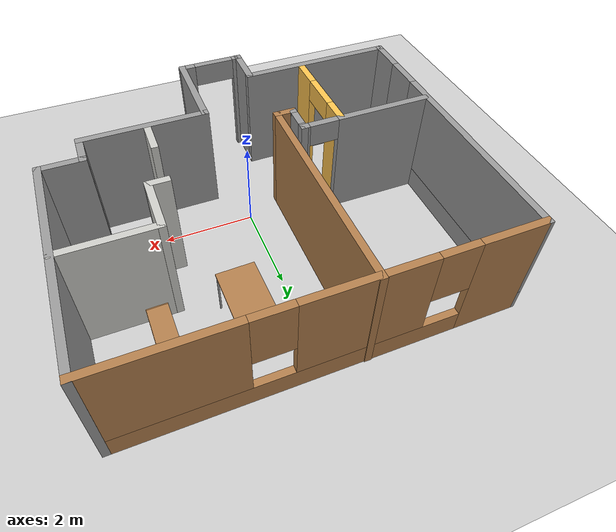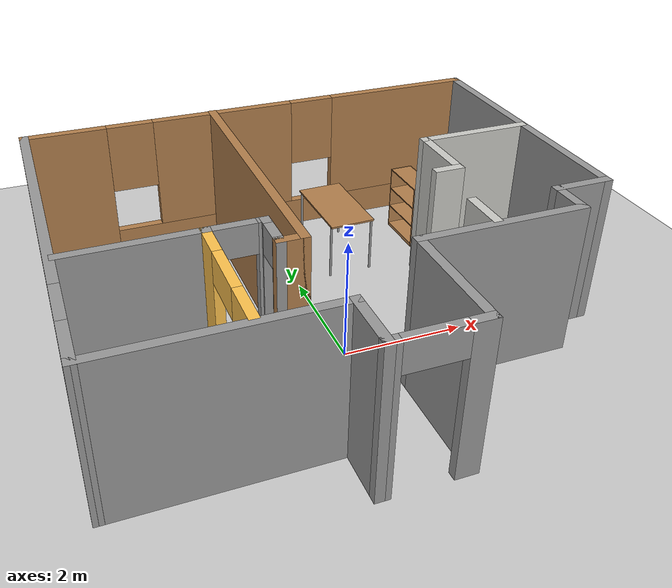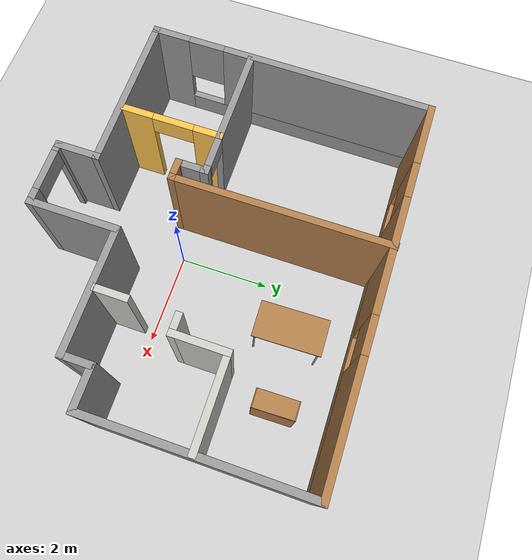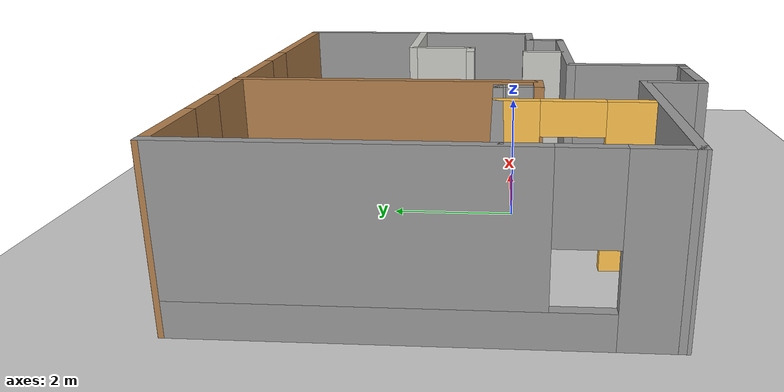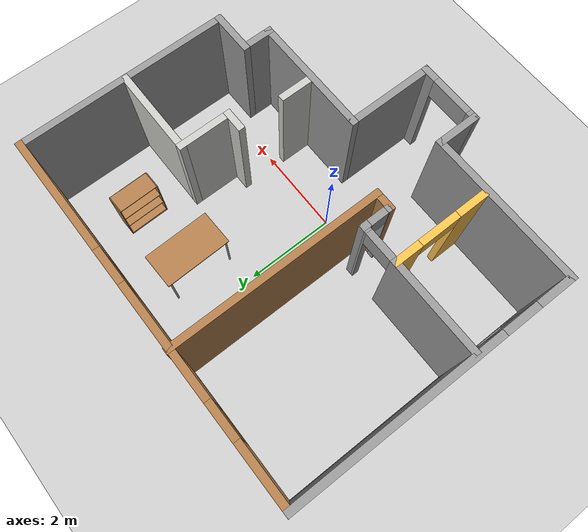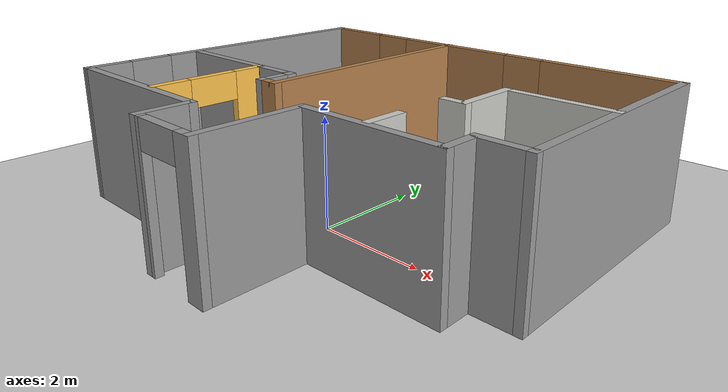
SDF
<sdf version="1.6">
 <world name="default">
  <light name="sun" type="directional">
   <pose>0 0 10 0 -0 0</pose>
   <diffuse>0.8 0.8 0.8 1</diffuse>
   <specular>0.2 0.2 0.2 1</specular>
   <attenuation>
    <range>1000</range>
    <constant>0.9</constant>
    <linear>0.01</linear>
    <quadratic>0.001</quadratic>
   </attenuation>
   <direction>-0.5 0.1 -0.9</direction>
  </light>
  <model name="ground_plane">
   <static>1</static>
   <link name="link">
    <collision name="collision">
     <geometry><plane><normal>0 0 1</normal><size>100 100</size></plane></geometry>
     <surface><friction><ode><mu>100</mu><mu2>50</mu2></ode></friction></surface>
    </collision>
    <visual name="visual">
     <cast_shadows>0</cast_shadows>
     <geometry><plane><normal>0 0 1</normal><size>100 100</size></plane></geometry>
     <material>
      <script><uri>file://media/materials/scripts/gazebo.material</uri><name>Gazebo/Grey</name></script>
     </material>
    </visual>
   </link>
  </model>
  <gravity>0 0 -9.8</gravity>
  <magnetic_field>6e-06 2.3e-05 -4.2e-05</magnetic_field>
  <atmosphere type="adiabatic"/>
  <physics name="default_physics" default="0" type="ode">
   <max_step_size>0.001</max_step_size>
   <real_time_factor>1</real_time_factor>
   <real_time_update_rate>1000</real_time_update_rate>
  </physics>
  <scene><ambient>0.4 0.4 0.4 1</ambient><background>0.7 0.7 0.7 1</background><shadows>1</shadows></scene>
  <audio><device>default</device></audio>
  <spherical_coordinates>
   <surface_model>EARTH_WGS84</surface_model>
   <latitude_deg>0</latitude_deg>
   <longitude_deg>0</longitude_deg>
   <elevation>0</elevation>
   <heading_deg>0</heading_deg>
  </spherical_coordinates>
  <model name="small_apt_1">
   <pose>-0.029378 0.719467 0 0 -0 0</pose>
   <link name="Wall_58">
    <pose>0.025297 3.51647 0 0 -0 0</pose>
    <visual name="Wall_58_Visual_0">
     <pose>-3.4116 0 1.25 0 -0 0</pose>
     <geometry><box><size>1.42681 0.15 2.5</size></box></geometry>
     <material>
      <script><uri>file://media/materials/scripts/gazebo.material</uri><name>Gazebo/Wood</name></script>
      <ambient>1 1 1 1</ambient>
     </material>
     <meta><layer>0</layer></meta>
    </visual>
    <collision name="Wall_58_Collision_0">
     <geometry><box><size>1.42681 0.15 2.5</size></box></geometry>
     <pose>-3.4116 0 1.25 0 -0 0</pose>
    </collision>
    <visual name="Wall_58_Visual_1">
     <pose>0.713403 0 0.25 0 -0 0</pose>
     <geometry><box><size>6.82319 0.15 0.5</size></box></geometry>
     <material>
      <script><uri>file://media/materials/scripts/gazebo.material</uri><name>Gazebo/Wood</name></script>
      <ambient>1 1 1 1</ambient>
     </material>
     <meta><layer>0</layer></meta>
    </visual>
    <collision name="Wall_58_Collision_1">
     <geometry><box><size>6.82319 0.15 0.5</size></box></geometry>
     <pose>0.713403 0 0.25 0 -0 0</pose>
    </collision>
    <visual name="Wall_58_Visual_2">
     <pose>-0.627406 0 1.5 0 -0 0</pose>
     <geometry><box><size>2.54157 0.15 2</size></box></geometry>
     <material>
      <script><uri>file://media/materials/scripts/gazebo.material</uri><name>Gazebo/Wood</name></script>
      <ambient>1 1 1 1</ambient>
     </material>
     <meta><layer>0</layer></meta>
    </visual>
    <collision name="Wall_58_Collision_2">
     <geometry><box><size>2.54157 0.15 2</size></box></geometry>
     <pose>-0.627406 0 1.5 0 -0 0</pose>
    </collision>
    <visual name="Wall_58_Visual_3">
     <pose>2.78419 0 1.5 0 -0 0</pose>
     <geometry><box><size>2.68162 0.15 2</size></box></geometry>
     <material>
      <script><uri>file://media/materials/scripts/gazebo.material</uri><name>Gazebo/Wood</name></script>
      <ambient>1 1 1 1</ambient>
     </material>
     <meta><layer>0</layer></meta>
    </visual>
    <collision name="Wall_58_Collision_3">
     <geometry><box><size>2.68162 0.15 2</size></box></geometry>
     <pose>2.78419 0 1.5 0 -0 0</pose>
    </collision>
    <visual name="Wall_58_Visual_4">
     <pose>-2.29819 0 1.9 0 -0 0</pose>
     <geometry><box><size>0.8 0.15 1.2</size></box></geometry>
     <material>
      <script><uri>file://media/materials/scripts/gazebo.material</uri><name>Gazebo/Wood</name></script>
      <ambient>1 1 1 1</ambient>
     </material>
     <meta><layer>0</layer></meta>
    </visual>
    <collision name="Wall_58_Collision_4">
     <geometry><box><size>0.8 0.15 1.2</size></box></geometry>
     <pose>-2.29819 0 1.9 0 -0 0</pose>
    </collision>
    <visual name="Wall_58_Visual_5">
     <pose>1.04338 0 1.9 0 -0 0</pose>
     <geometry><box><size>0.8 0.15 1.2</size></box></geometry>
     <material>
      <script><uri>file://media/materials/scripts/gazebo.material</uri><name>Gazebo/Wood</name></script>
      <ambient>1 1 1 1</ambient>
     </material>
     <meta><layer>0</layer></meta>
    </visual>
    <collision name="Wall_58_Collision_5">
     <geometry><box><size>0.8 0.15 1.2</size></box></geometry>
     <pose>1.04338 0 1.9 0 -0 0</pose>
    </collision>
   </link>
   <link name="Wall_59">
    <collision name="Wall_59_Collision">
     <geometry><box><size>4.75 0.15 2.5</size></box></geometry>
     <pose>0 0 1.25 0 -0 0</pose>
    </collision>
    <visual name="Wall_59_Visual">
     <pose>0 0 1.25 0 -0 0</pose>
     <geometry><box><size>4.75 0.15 2.5</size></box></geometry>
     <material>
      <script><uri>file://media/materials/scripts/gazebo.material</uri><name>Gazebo/Grey</name></script>
      <ambient>1 1 1 1</ambient>
     </material>
     <meta><layer>0</layer></meta>
    </visual>
    <pose>4.07509 1.21661 0 0 -0 -1.57089</pose>
   </link>
   <link name="Wall_60">
    <collision name="Wall_60_Collision">
     <geometry><box><size>1 0.15 2.5</size></box></geometry>
     <pose>0 0 1.25 0 -0 0</pose>
    </collision>
    <visual name="Wall_60_Visual">
     <pose>0 0 1.25 0 -0 0</pose>
     <geometry><box><size>1 0.15 2.5</size></box></geometry>
     <material>
      <script><uri>file://media/materials/scripts/gazebo.material</uri><name>Gazebo/Grey</name></script>
      <ambient>1 1 1 1</ambient>
     </material>
     <meta><layer>0</layer></meta>
    </visual>
    <pose>3.64988 -1.08326 0 0 -0 3.14159</pose>
   </link>
   <link name="Wall_61">
    <collision name="Wall_61_Collision">
     <geometry><box><size>0.75 0.15 2.5</size></box></geometry>
     <pose>0 0 1.25 0 -0 0</pose>
    </collision>
    <visual name="Wall_61_Visual">
     <pose>0 0 1.25 0 -0 0</pose>
     <geometry><box><size>0.75 0.15 2.5</size></box></geometry>
     <material>
      <script><uri>file://media/materials/scripts/gazebo.material</uri><name>Gazebo/Grey</name></script>
      <ambient>1 1 1 1</ambient>
     </material>
     <meta><layer>0</layer></meta>
    </visual>
    <pose>3.22488 -1.38326 0 0 -0 -1.5708</pose>
   </link>
   <link name="Wall_62">
    <collision name="Wall_62_Collision">
     <geometry><box><size>2.75 0.15 2.5</size></box></geometry>
     <pose>0 0 1.25 0 -0 0</pose>
    </collision>
    <visual name="Wall_62_Visual">
     <pose>0 0 1.25 0 -0 0</pose>
     <geometry><box><size>2.75 0.15 2.5</size></box></geometry>
     <material>
      <script><uri>file://media/materials/scripts/gazebo.material</uri><name>Gazebo/Grey</name></script>
      <ambient>1 1 1 1</ambient>
     </material>
     <meta><layer>0</layer></meta>
    </visual>
    <pose>1.92488 -1.68326 0 0 -0 3.14159</pose>
   </link>
   <link name="Wall_63">
    <collision name="Wall_63_Collision">
     <geometry><box><size>2 0.15 2.5</size></box></geometry>
     <pose>0 0 1.25 0 -0 0</pose>
    </collision>
    <visual name="Wall_63_Visual">
     <pose>0 0 1.25 0 -0 0</pose>
     <geometry><box><size>2 0.15 2.5</size></box></geometry>
     <material>
      <script><uri>file://media/materials/scripts/gazebo.material</uri><name>Gazebo/Grey</name></script>
      <ambient>1 1 1 1</ambient>
     </material>
     <meta><layer>0</layer></meta>
    </visual>
    <pose>0.624878 -2.60826 0 0 -0 -1.5708</pose>
   </link>
   <link name="Wall_64">
    <pose>-0.050122 -3.53326 0 0 -0 3.14159</pose>
    <visual name="Wall_64_Visual_0">
     <pose>-0.567309 0 1.25 0 -0 0</pose>
     <geometry><box><size>0.365382 0.15 2.5</size></box></geometry>
     <material>
      <script><uri>file://media/materials/scripts/gazebo.material</uri><name>Gazebo/Grey</name></script>
      <ambient>1 1 1 1</ambient>
     </material>
     <meta><layer>0</layer></meta>
    </visual>
    <collision name="Wall_64_Collision_0">
     <geometry><box><size>0.365382 0.15 2.5</size></box></geometry>
     <pose>-0.567309 0 1.25 0 -0 0</pose>
    </collision>
    <visual name="Wall_64_Visual_1">
     <pose>0.632691 0 1.25 0 -0 0</pose>
     <geometry><box><size>0.234618 0.15 2.5</size></box></geometry>
     <material>
      <script><uri>file://media/materials/scripts/gazebo.material</uri><name>Gazebo/Grey</name></script>
      <ambient>1 1 1 1</ambient>
     </material>
     <meta><layer>0</layer></meta>
    </visual>
    <collision name="Wall_64_Collision_1">
     <geometry><box><size>0.234618 0.15 2.5</size></box></geometry>
     <pose>0.632691 0 1.25 0 -0 0</pose>
    </collision>
    <visual name="Wall_64_Visual_2">
     <pose>0.065382 0 2.25 0 -0 0</pose>
     <geometry><box><size>0.9 0.15 0.5</size></box></geometry>
     <material>
      <script><uri>file://media/materials/scripts/gazebo.material</uri><name>Gazebo/Grey</name></script>
      <ambient>1 1 1 1</ambient>
     </material>
     <meta><layer>0</layer></meta>
    </visual>
    <collision name="Wall_64_Collision_2">
     <geometry><box><size>0.9 0.15 0.5</size></box></geometry>
     <pose>0.065382 0 2.25 0 -0 0</pose>
    </collision>
   </link>
   <link name="Wall_65">
    <collision name="Wall_65_Collision">
     <geometry><box><size>1 0.15 2.5</size></box></geometry>
     <pose>0 0 1.25 0 -0 0</pose>
    </collision>
    <visual name="Wall_65_Visual">
     <pose>0 0 1.25 0 -0 0</pose>
     <geometry><box><size>1 0.15 2.5</size></box></geometry>
     <material>
      <script><uri>file://media/materials/scripts/gazebo.material</uri><name>Gazebo/Grey</name></script>
      <ambient>1 1 1 1</ambient>
     </material>
     <meta><layer>0</layer></meta>
    </visual>
    <pose>-0.725122 -3.10826 0 0 -0 1.5708</pose>
   </link>
   <link name="Wall_66">
    <collision name="Wall_66_Collision">
     <geometry><box><size>3.5 0.15 2.5</size></box></geometry>
     <pose>0 0 1.25 0 -0 0</pose>
    </collision>
    <visual name="Wall_66_Visual">
     <pose>0 0 1.25 0 -0 0</pose>
     <geometry><box><size>3.5 0.15 2.5</size></box></geometry>
     <material>
      <script><uri>file://media/materials/scripts/gazebo.material</uri><name>Gazebo/Grey</name></script>
      <ambient>1 1 1 1</ambient>
     </material>
     <meta><layer>0</layer></meta>
    </visual>
    <pose>-2.39991 -2.68339 0 0 -0 -3.14151</pose>
   </link>
   <link name="Wall_67">
    <pose>-4.0497 0.416475 0 0 -0 1.56273</pose>
    <visual name="Wall_67_Visual_0">
     <pose>-2.74295 0 1.25 0 -0 0</pose>
     <geometry><box><size>0.864294 0.15 2.5</size></box></geometry>
     <material>
      <script><uri>file://media/materials/scripts/gazebo.material</uri><name>Gazebo/Grey</name></script>
      <ambient>1 1 1 1</ambient>
     </material>
     <meta><layer>0</layer></meta>
    </visual>
    <collision name="Wall_67_Collision_0">
     <geometry><box><size>0.864294 0.15 2.5</size></box></geometry>
     <pose>-2.74295 0 1.25 0 -0 0</pose>
    </collision>
    <visual name="Wall_67_Visual_1">
     <pose>0.432147 0 0.25 0 -0 0</pose>
     <geometry><box><size>5.48591 0.15 0.5</size></box></geometry>
     <material>
      <script><uri>file://media/materials/scripts/gazebo.material</uri><name>Gazebo/Grey</name></script>
      <ambient>1 1 1 1</ambient>
     </material>
     <meta><layer>0</layer></meta>
    </visual>
    <collision name="Wall_67_Collision_1">
     <geometry><box><size>5.48591 0.15 0.5</size></box></geometry>
     <pose>0.432147 0 0.25 0 -0 0</pose>
    </collision>
    <visual name="Wall_67_Visual_2">
     <pose>0.832147 0 1.5 0 -0 0</pose>
     <geometry><box><size>4.68591 0.15 2</size></box></geometry>
     <material>
      <script><uri>file://media/materials/scripts/gazebo.material</uri><name>Gazebo/Grey</name></script>
      <ambient>1 1 1 1</ambient>
     </material>
     <meta><layer>0</layer></meta>
    </visual>
    <collision name="Wall_67_Collision_2">
     <geometry><box><size>4.68591 0.15 2</size></box></geometry>
     <pose>0.832147 0 1.5 0 -0 0</pose>
    </collision>
    <visual name="Wall_67_Visual_3">
     <pose>-1.91081 0 1.9 0 -0 0</pose>
     <geometry><box><size>0.8 0.15 1.2</size></box></geometry>
     <material>
      <script><uri>file://media/materials/scripts/gazebo.material</uri><name>Gazebo/Grey</name></script>
      <ambient>1 1 1 1</ambient>
     </material>
     <meta><layer>0</layer></meta>
    </visual>
    <collision name="Wall_67_Collision_3">
     <geometry><box><size>0.8 0.15 1.2</size></box></geometry>
     <pose>-1.91081 0 1.9 0 -0 0</pose>
    </collision>
   </link>
   <link name="Wall_69">
    <collision name="Wall_69_Collision">
     <geometry><box><size>4.75 0.15 2.5</size></box></geometry>
     <pose>0 0 1.25 0 -0 0</pose>
    </collision>
    <visual name="Wall_69_Visual">
     <pose>0 0 1.25 0 -0 0</pose>
     <geometry><box><size>4.75 0.15 2.5</size></box></geometry>
     <material>
      <script><uri>file://media/materials/scripts/gazebo.material</uri><name>Gazebo/Wood</name></script>
      <ambient>0.435294 0.796078 0.67451 1</ambient>
     </material>
     <meta><layer>0</layer></meta>
    </visual>
    <pose>-0.780221 1.23326 0 0 -0 -1.5708</pose>
   </link>
   <link name="Wall_70">
    <collision name="Wall_70_Collision">
     <geometry><box><size>0.5 0.15 2.5</size></box></geometry>
     <pose>0 0 1.25 0 -0 0</pose>
    </collision>
    <visual name="Wall_70_Visual">
     <pose>0 0 1.25 0 -0 0</pose>
     <geometry><box><size>0.5 0.15 2.5</size></box></geometry>
     <material>
      <script><uri>file://media/materials/scripts/gazebo.material</uri><name>Gazebo/Wood</name></script>
      <ambient>1 1 1 1</ambient>
     </material>
     <meta><layer>0</layer></meta>
    </visual>
    <pose>-0.955221 -1.06674 0 0 -0 3.14159</pose>
   </link>
   <link name="Wall_71">
    <pose>-1.13022 -0.766744 0 0 -0 1.5708</pose>
    <visual name="Wall_71_Visual_0">
     <pose>-0.293963 0 1.25 0 -0 0</pose>
     <geometry><box><size>0.162075 0.15 2.5</size></box></geometry>
     <material>
      <script><uri>file://media/materials/scripts/gazebo.material</uri><name>Gazebo/Grey</name></script>
      <ambient>1 1 1 1</ambient>
     </material>
     <meta><layer>0</layer></meta>
    </visual>
    <collision name="Wall_71_Collision_0">
     <geometry><box><size>0.162075 0.15 2.5</size></box></geometry>
     <pose>-0.293963 0 1.25 0 -0 0</pose>
    </collision>
    <visual name="Wall_71_Visual_1">
     <pose>0.281037 0 1.25 0 -0 0</pose>
     <geometry><box><size>0.187925 0.15 2.5</size></box></geometry>
     <material>
      <script><uri>file://media/materials/scripts/gazebo.material</uri><name>Gazebo/Grey</name></script>
      <ambient>1 1 1 1</ambient>
     </material>
     <meta><layer>0</layer></meta>
    </visual>
    <collision name="Wall_71_Collision_1">
     <geometry><box><size>0.187925 0.15 2.5</size></box></geometry>
     <pose>0.281037 0 1.25 0 -0 0</pose>
    </collision>
    <visual name="Wall_71_Visual_2">
     <pose>-0.012925 0 2.25 0 -0 0</pose>
     <geometry><box><size>0.4 0.15 0.5</size></box></geometry>
     <material>
      <script><uri>file://media/materials/scripts/gazebo.material</uri><name>Gazebo/Grey</name></script>
      <ambient>1 1 1 1</ambient>
     </material>
     <meta><layer>0</layer></meta>
    </visual>
    <collision name="Wall_71_Collision_2">
     <geometry><box><size>0.4 0.15 0.5</size></box></geometry>
     <pose>-0.012925 0 2.25 0 -0 0</pose>
    </collision>
   </link>
   <link name="Wall_72">
    <pose>-2.55522 -0.466744 0 0 -0 3.14159</pose>
    <visual name="Wall_72_Visual_0">
     <pose>-1.40086 0 1.25 0 -0 0</pose>
     <geometry><box><size>0.198273 0.15 2.5</size></box></geometry>
     <material>
      <script><uri>file://media/materials/scripts/gazebo.material</uri><name>Gazebo/Grey</name></script>
      <ambient>1 1 1 1</ambient>
     </material>
     <meta><layer>0</layer></meta>
    </visual>
    <collision name="Wall_72_Collision_0">
     <geometry><box><size>0.198273 0.15 2.5</size></box></geometry>
     <pose>-1.40086 0 1.25 0 -0 0</pose>
    </collision>
    <visual name="Wall_72_Visual_1">
     <pose>0.424137 0 1.25 0 -0 0</pose>
     <geometry><box><size>2.15173 0.15 2.5</size></box></geometry>
     <material>
      <script><uri>file://media/materials/scripts/gazebo.material</uri><name>Gazebo/Grey</name></script>
      <ambient>1 1 1 1</ambient>
     </material>
     <meta><layer>0</layer></meta>
    </visual>
    <collision name="Wall_72_Collision_1">
     <geometry><box><size>2.15173 0.15 2.5</size></box></geometry>
     <pose>0.424137 0 1.25 0 -0 0</pose>
    </collision>
    <visual name="Wall_72_Visual_2">
     <pose>-0.976727 0 2.25 0 -0 0</pose>
     <geometry><box><size>0.65 0.15 0.5</size></box></geometry>
     <material>
      <script><uri>file://media/materials/scripts/gazebo.material</uri><name>Gazebo/Grey</name></script>
      <ambient>1 1 1 1</ambient>
     </material>
     <meta><layer>0</layer></meta>
    </visual>
    <collision name="Wall_72_Collision_2">
     <geometry><box><size>0.65 0.15 0.5</size></box></geometry>
     <pose>-0.976727 0 2.25 0 -0 0</pose>
    </collision>
   </link>
   <link name="Wall_74">
    <pose>-1.9839 -1.52329 0 0 -0 -1.5708</pose>
    <visual name="Wall_74_Visual_0">
     <pose>-0.80341 0 1.25 0 -0 0</pose>
     <geometry><box><size>0.643179 0.15 2.5</size></box></geometry>
     <material>
      <script><uri>file://media/materials/scripts/gazebo.material</uri><name>Gazebo/Grey</name></script>
      <ambient>1 0.764706 0.305882 1</ambient>
     </material>
     <meta><layer>0</layer></meta>
    </visual>
    <collision name="Wall_74_Collision_0">
     <geometry><box><size>0.643179 0.15 2.5</size></box></geometry>
     <pose>-0.80341 0 1.25 0 -0 0</pose>
    </collision>
    <visual name="Wall_74_Visual_1">
     <pose>0.77159 0 1.25 0 -0 0</pose>
     <geometry><box><size>0.706821 0.15 2.5</size></box></geometry>
     <material>
      <script><uri>file://media/materials/scripts/gazebo.material</uri><name>Gazebo/Grey</name></script>
      <ambient>1 0.764706 0.305882 1</ambient>
     </material>
     <meta><layer>0</layer></meta>
    </visual>
    <collision name="Wall_74_Collision_1">
     <geometry><box><size>0.706821 0.15 2.5</size></box></geometry>
     <pose>0.77159 0 1.25 0 -0 0</pose>
    </collision>
    <visual name="Wall_74_Visual_2">
     <pose>-0.031821 0 2.25 0 -0 0</pose>
     <geometry><box><size>0.9 0.15 0.5</size></box></geometry>
     <material>
      <script><uri>file://media/materials/scripts/gazebo.material</uri><name>Gazebo/Grey</name></script>
      <ambient>1 0.764706 0.305882 1</ambient>
     </material>
     <meta><layer>0</layer></meta>
    </visual>
    <collision name="Wall_74_Collision_2">
     <geometry><box><size>0.9 0.15 0.5</size></box></geometry>
     <pose>-0.031821 0 2.25 0 -0 0</pose>
    </collision>
   </link>
   <link name="Wall_76">
    <collision name="Wall_76_Collision">
     <geometry><box><size>2 0.15 2.5</size></box></geometry>
     <pose>0 0 1.25 0 -0 0</pose>
    </collision>
    <visual name="Wall_76_Visual">
     <pose>0 0 1.25 0 -0 0</pose>
     <geometry><box><size>2 0.15 2.5</size></box></geometry>
     <material>
      <script><uri>file://media/materials/scripts/gazebo.material</uri><name>Gazebo/CeilingTiled</name></script>
      <ambient>1 1 1 1</ambient>
     </material>
     <meta><layer>0</layer></meta>
    </visual>
    <pose>3.13327 1.17009 0 0 -0 3.14159</pose>
   </link>
   <link name="Wall_77">
    <collision name="Wall_77_Collision">
     <geometry><box><size>1.25 0.15 2.5</size></box></geometry>
     <pose>0 0 1.25 0 -0 0</pose>
    </collision>
    <visual name="Wall_77_Visual">
     <pose>0 0 1.25 0 -0 0</pose>
     <geometry><box><size>1.25 0.15 2.5</size></box></geometry>
     <material>
      <script><uri>file://media/materials/scripts/gazebo.material</uri><name>Gazebo/CeilingTiled</name></script>
      <ambient>1 1 1 1</ambient>
     </material>
     <meta><layer>0</layer></meta>
    </visual>
    <pose>2.20827 0.620093 0 0 -0 -1.5708</pose>
   </link>
   <link name="Wall_78">
    <collision name="Wall_78_Collision">
     <geometry><box><size>0.5 0.15 2.5</size></box></geometry>
     <pose>0 0 1.25 0 -0 0</pose>
    </collision>
    <visual name="Wall_78_Visual">
     <pose>0 0 1.25 0 -0 0</pose>
     <geometry><box><size>0.5 0.15 2.5</size></box></geometry>
     <material>
      <script><uri>file://media/materials/scripts/gazebo.material</uri><name>Gazebo/CeilingTiled</name></script>
      <ambient>1 1 1 1</ambient>
     </material>
     <meta><layer>0</layer></meta>
    </visual>
    <pose>2.03327 0.070093 0 0 -0 3.14159</pose>
   </link>
   <link name="Wall_80">
    <collision name="Wall_80_Collision">
     <geometry><box><size>0.75 0.15 2.5</size></box></geometry>
     <pose>0 0 1.25 0 -0 0</pose>
    </collision>
    <visual name="Wall_80_Visual">
     <pose>0 0 1.25 0 -0 0</pose>
     <geometry><box><size>0.75 0.15 2.5</size></box></geometry>
     <material>
      <script><uri>file://media/materials/scripts/gazebo.material</uri><name>Gazebo/CeilingTiled</name></script>
      <ambient>1 1 1 1</ambient>
     </material>
     <meta><layer>0</layer></meta>
    </visual>
    <pose>1.86024 -1.28308 0 0 -0 -1.5708</pose>
   </link>
   <static>1</static>
  </model>
  <model name="table">
   <static>1</static>
   <link name="link">
    <collision name="surface">
     <pose>0 0 1 0 -0 0</pose>
     <geometry><box><size>1.5 0.8 0.03</size></box></geometry>
     <surface><friction><ode><mu>0.6</mu><mu2>0.6</mu2></ode></friction></surface>
    </collision>
    <visual name="visual1">
     <pose>0 0 1 0 -0 0</pose>
     <geometry><box><size>1.5 0.8 0.03</size></box></geometry>
     <material>
      <script><uri>file://media/materials/scripts/gazebo.material</uri><name>Gazebo/Wood</name></script>
     </material>
    </visual>
    <collision name="front_left_leg">
     <pose>0.68 0.38 0.5 0 -0 0</pose>
     <geometry><cylinder><radius>0.02</radius><length>1</length></cylinder></geometry>
    </collision>
    <visual name="front_left_leg">
     <pose>0.68 0.38 0.5 0 -0 0</pose>
     <geometry><cylinder><radius>0.02</radius><length>1</length></cylinder></geometry>
     <material>
      <script><uri>file://media/materials/scripts/gazebo.material</uri><name>Gazebo/Grey</name></script>
     </material>
    </visual>
    <collision name="front_right_leg">
     <pose>0.68 -0.38 0.5 0 -0 0</pose>
     <geometry><cylinder><radius>0.02</radius><length>1</length></cylinder></geometry>
    </collision>
    <visual name="front_right_leg">
     <pose>0.68 -0.38 0.5 0 -0 0</pose>
     <geometry><cylinder><radius>0.02</radius><length>1</length></cylinder></geometry>
     <material>
      <script><uri>file://media/materials/scripts/gazebo.material</uri><name>Gazebo/Grey</name></script>
     </material>
    </visual>
    <collision name="back_right_leg">
     <pose>-0.68 -0.38 0.5 0 -0 0</pose>
     <geometry><cylinder><radius>0.02</radius><length>1</length></cylinder></geometry>
    </collision>
    <visual name="back_right_leg">
     <pose>-0.68 -0.38 0.5 0 -0 0</pose>
     <geometry><cylinder><radius>0.02</radius><length>1</length></cylinder></geometry>
     <material>
      <script><uri>file://media/materials/scripts/gazebo.material</uri><name>Gazebo/Grey</name></script>
     </material>
    </visual>
    <collision name="back_left_leg">
     <pose>-0.68 0.38 0.5 0 -0 0</pose>
     <geometry><cylinder><radius>0.02</radius><length>1</length></cylinder></geometry>
    </collision>
    <visual name="back_left_leg">
     <pose>-0.68 0.38 0.5 0 -0 0</pose>
     <geometry><cylinder><radius>0.02</radius><length>1</length></cylinder></geometry>
     <material>
      <script><uri>file://media/materials/scripts/gazebo.material</uri><name>Gazebo/Grey</name></script>
     </material>
    </visual>
   </link>
   <pose>1.00179 2.84207 0 0 0 -1.54673</pose>
  </model>
  <model name="bookshelf">
   <static>1</static>
   <link name="link">
    <inertial><mass>1</mass></inertial>
    <collision name="back">
     <pose>0 0.005 0.6 0 -0 0</pose>
     <geometry><box><size>0.9 0.01 1.2</size></box></geometry>
    </collision>
    <visual name="visual1">
     <pose>0 0.005 0.6 0 -0 0</pose>
     <geometry><box><size>0.9 0.01 1.2</size></box></geometry>
     <material>
      <script><uri>file://media/materials/scripts/gazebo.material</uri><name>Gazebo/Wood</name></script>
     </material>
    </visual>
    <collision name="left_side">
     <pose>0.45 -0.195 0.6 0 -0 0</pose>
     <geometry><box><size>0.02 0.4 1.2</size></box></geometry>
    </collision>
    <visual name="visual2">
     <pose>0.45 -0.195 0.6 0 -0 0</pose>
     <geometry><box><size>0.02 0.4 1.2</size></box></geometry>
     <material>
      <script><uri>file://media/materials/scripts/gazebo.material</uri><name>Gazebo/Wood</name></script>
     </material>
    </visual>
    <collision name="right_side">
     <pose>-0.45 -0.195 0.6 0 -0 0</pose>
     <geometry><box><size>0.02 0.4 1.2</size></box></geometry>
    </collision>
    <visual name="visual3">
     <pose>-0.45 -0.195 0.6 0 -0 0</pose>
     <geometry><box><size>0.02 0.4 1.2</size></box></geometry>
     <material>
      <script><uri>file://media/materials/scripts/gazebo.material</uri><name>Gazebo/Wood</name></script>
     </material>
    </visual>
    <collision name="bottom">
     <pose>0 -0.195 0.03 0 -0 0</pose>
     <geometry><box><size>0.88 0.4 0.06</size></box></geometry>
    </collision>
    <visual name="visual4">
     <pose>0 -0.195 0.03 0 -0 0</pose>
     <geometry><box><size>0.88 0.4 0.06</size></box></geometry>
     <material>
      <script><uri>file://media/materials/scripts/gazebo.material</uri><name>Gazebo/Wood</name></script>
     </material>
    </visual>
    <collision name="top">
     <pose>0 -0.195 1.19 0 -0 0</pose>
     <geometry><box><size>0.88 0.4 0.02</size></box></geometry>
    </collision>
    <visual name="visual5">
     <pose>0 -0.195 1.19 0 -0 0</pose>
     <geometry><box><size>0.88 0.4 0.02</size></box></geometry>
     <material>
      <script><uri>file://media/materials/scripts/gazebo.material</uri><name>Gazebo/Wood</name></script>
     </material>
    </visual>
    <collision name="low_shelf">
     <pose>0 -0.195 0.43 0 -0 0</pose>
     <geometry><box><size>0.88 0.4 0.02</size></box></geometry>
    </collision>
    <visual name="visual6">
     <pose>0 -0.195 0.43 0 -0 0</pose>
     <geometry><box><size>0.88 0.4 0.02</size></box></geometry>
     <material>
      <script><uri>file://media/materials/scripts/gazebo.material</uri><name>Gazebo/Wood</name></script>
     </material>
    </visual>
    <collision name="high_shelf">
     <pose>0 -0.195 0.8 0 -0 0</pose>
     <geometry><box><size>0.88 0.4 0.02</size></box></geometry>
    </collision>
    <visual name="visual7">
     <pose>0 -0.195 0.8 0 -0 0</pose>
     <geometry><box><size>0.88 0.4 0.02</size></box></geometry>
     <material>
      <script><uri>file://media/materials/scripts/gazebo.material</uri><name>Gazebo/Wood</name></script>
     </material>
    </visual>
   </link>
   <pose>2.80119 3.01321 0 0 0 -1.55247</pose>
  </model>
  <plugin filename="libcollision_map_creator.so" name="collision_map_creator"/>
 </world>
</sdf>
